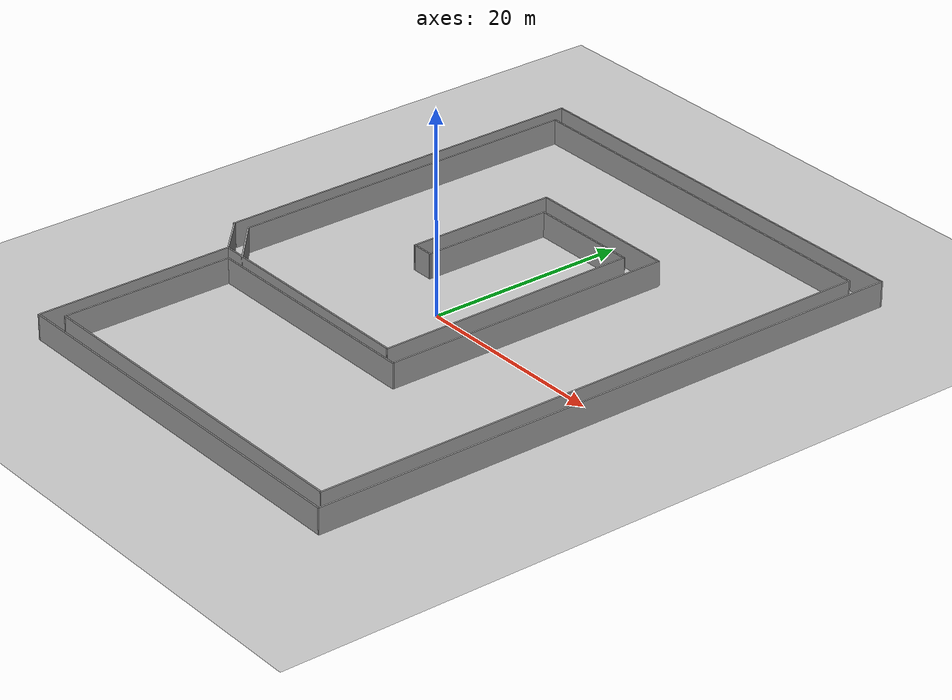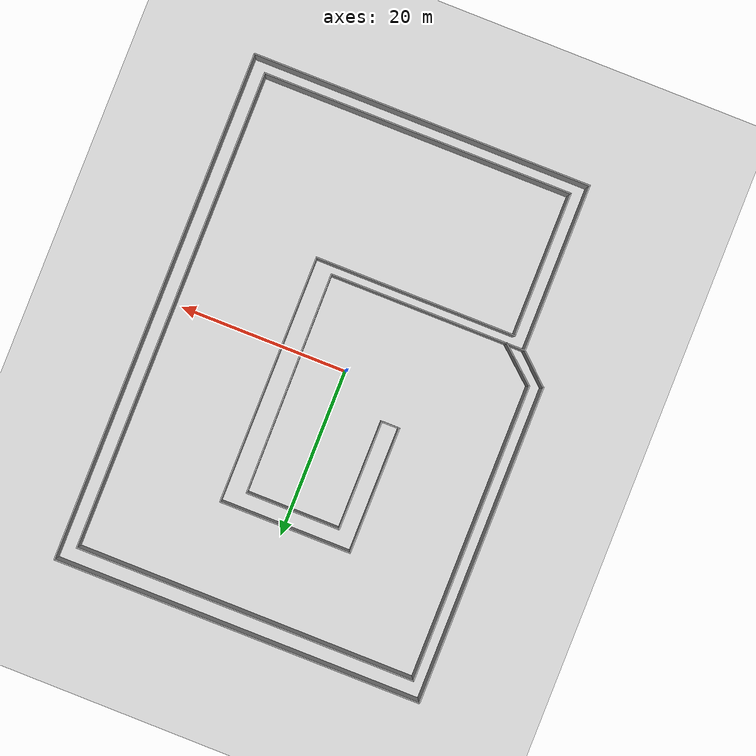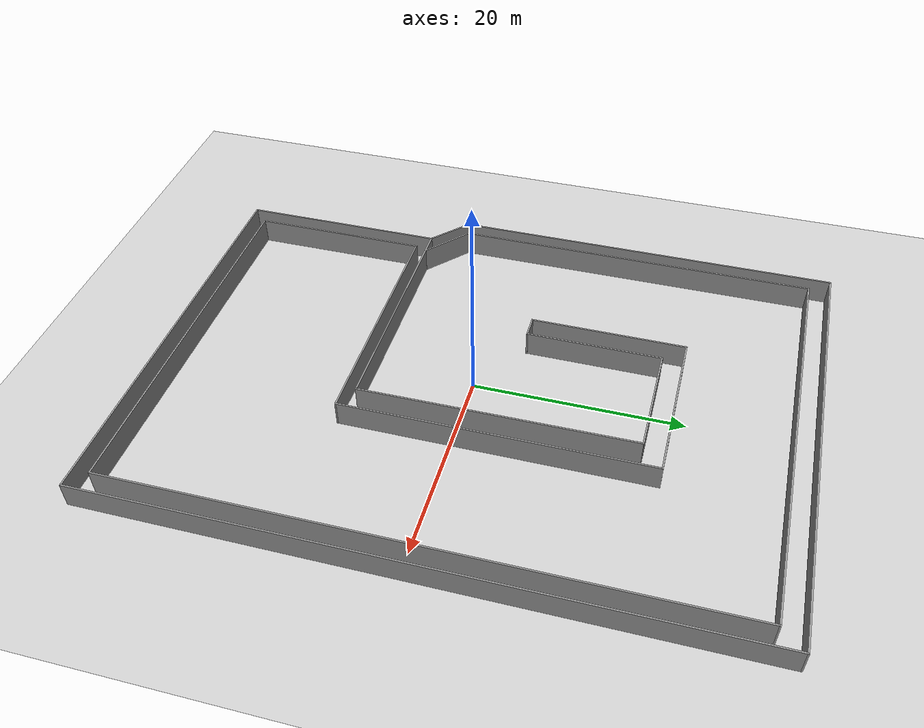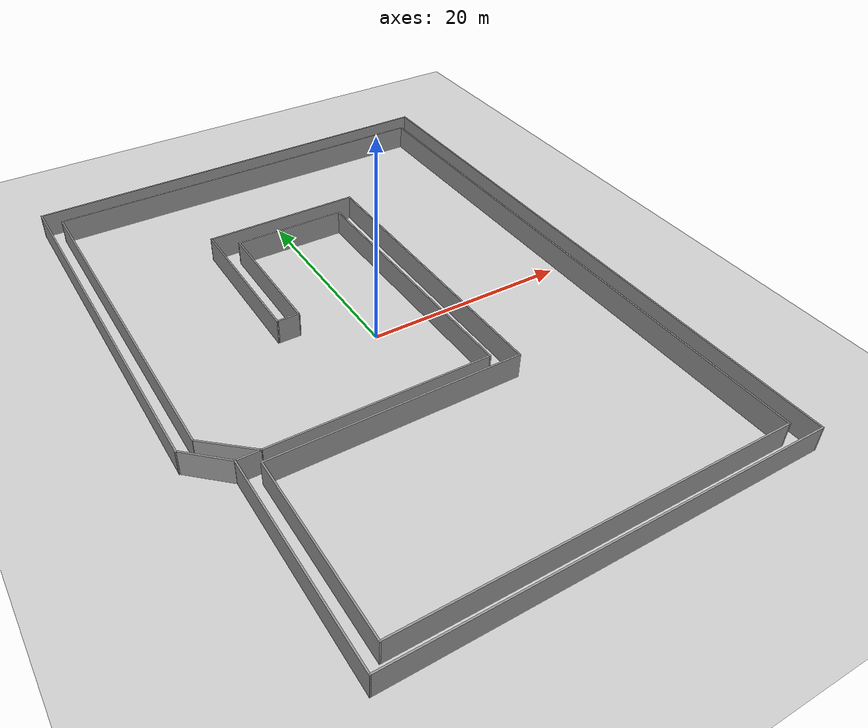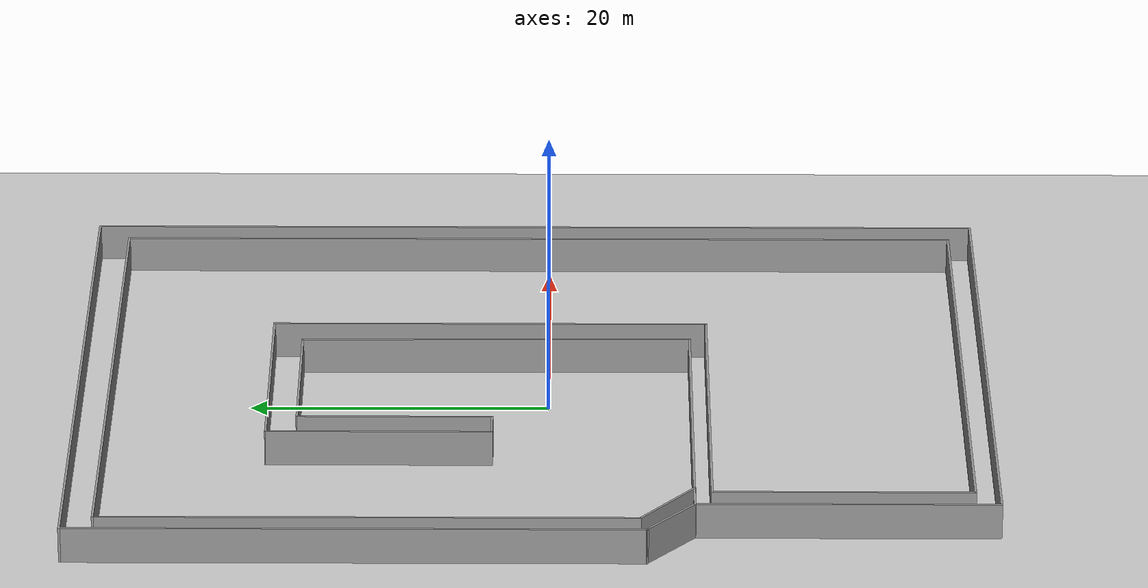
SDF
<sdf version="1.7">
 <world name="default">
  <light name="sun" type="directional">
   <pose>0 0 10 0 -0 0</pose>
   <diffuse>0.8 0.8 0.8 1</diffuse>
   <specular>0.2 0.2 0.2 1</specular>
   <attenuation>
    <range>1000</range>
    <constant>0.9</constant>
    <linear>0.01</linear>
    <quadratic>0.001</quadratic>
   </attenuation>
   <direction>-0.5 0.1 -0.9</direction>
   <spot><inner_angle>0</inner_angle><outer_angle>0</outer_angle><falloff>0</falloff></spot>
  </light>
  <model name="ground_plane">
   <static>1</static>
   <link name="link">
    <collision name="collision">
     <geometry><plane><normal>0 0 1</normal><size>100 100</size></plane></geometry>
     <surface><friction><ode><mu>100</mu><mu2>50</mu2></ode></friction></surface>
    </collision>
    <visual name="visual">
     <cast_shadows>0</cast_shadows>
     <geometry><plane><normal>0 0 1</normal><size>100 100</size></plane></geometry>
     <material>
      <script><uri>file://media/materials/scripts/gazebo.material</uri><name>Gazebo/Grey</name></script>
     </material>
    </visual>
   </link>
  </model>
  <gravity>0 0 -9.8</gravity>
  <magnetic_field>6e-06 2.3e-05 -4.2e-05</magnetic_field>
  <atmosphere type="adiabatic"/>
  <physics type="ode">
   <max_step_size>0.001</max_step_size>
   <real_time_factor>1</real_time_factor>
   <real_time_update_rate>1000</real_time_update_rate>
  </physics>
  <scene><ambient>0.4 0.4 0.4 1</ambient><background>0.7 0.7 0.7 1</background><shadows>1</shadows></scene>
  <audio><device>default</device></audio>
  <spherical_coordinates>
   <surface_model>EARTH_WGS84</surface_model>
   <latitude_deg>0</latitude_deg>
   <longitude_deg>0</longitude_deg>
   <elevation>0</elevation>
   <heading_deg>0</heading_deg>
  </spherical_coordinates>
  <model name="parking_arena1">
   <pose>0.647746 1.06133 0 0 -0 0</pose>
   <link name="Wall_10">
    <collision name="Wall_10_Collision">
     <geometry><box><size>15.0934 0.15 2.5</size></box></geometry>
     <pose>0 0 1.25 0 -0 0</pose>
    </collision>
    <visual name="Wall_10_Visual">
     <pose>0 0 1.25 0 -0 0</pose>
     <geometry><box><size>15.0934 0.15 2.5</size></box></geometry>
     <material>
      <script><uri>file://media/materials/scripts/gazebo.material</uri><name>Gazebo/Grey</name></script>
      <ambient>1 1 1 1</ambient>
     </material>
     <meta><layer>0</layer></meta>
    </visual>
    <pose>-8.55456 10.1592 0 0 -0 1.5687</pose>
   </link>
   <link name="Wall_11">
    <collision name="Wall_11_Collision">
     <geometry><box><size>15.75 0.15 2.5</size></box></geometry>
     <pose>0 0 1.25 0 -0 0</pose>
    </collision>
    <visual name="Wall_11_Visual">
     <pose>0 0 1.25 0 -0 0</pose>
     <geometry><box><size>15.75 0.15 2.5</size></box></geometry>
     <material>
      <script><uri>file://media/materials/scripts/gazebo.material</uri><name>Gazebo/Grey</name></script>
      <ambient>1 1 1 1</ambient>
     </material>
     <meta><layer>0</layer></meta>
    </visual>
    <pose>-0.738865 17.6309 0 0 -0 0</pose>
   </link>
   <link name="Wall_12">
    <collision name="Wall_12_Collision">
     <geometry><box><size>29.5 0.15 2.5</size></box></geometry>
     <pose>0 0 1.25 0 -0 0</pose>
    </collision>
    <visual name="Wall_12_Visual">
     <pose>0 0 1.25 0 -0 0</pose>
     <geometry><box><size>29.5 0.15 2.5</size></box></geometry>
     <material>
      <script><uri>file://media/materials/scripts/gazebo.material</uri><name>Gazebo/Grey</name></script>
      <ambient>1 1 1 1</ambient>
     </material>
     <meta><layer>0</layer></meta>
    </visual>
    <pose>7.06114 2.9559 0 0 -0 -1.5708</pose>
   </link>
   <link name="Wall_13">
    <collision name="Wall_13_Collision">
     <geometry><box><size>24 0.15 2.5</size></box></geometry>
     <pose>0 0 1.25 0 -0 0</pose>
    </collision>
    <visual name="Wall_13_Visual">
     <pose>0 0 1.25 0 -0 0</pose>
     <geometry><box><size>24 0.15 2.5</size></box></geometry>
     <material>
      <script><uri>file://media/materials/scripts/gazebo.material</uri><name>Gazebo/Grey</name></script>
      <ambient>1 1 1 1</ambient>
     </material>
     <meta><layer>0</layer></meta>
    </visual>
    <pose>-4.86386 -11.7191 0 0 -0 3.14159</pose>
   </link>
   <link name="Wall_15">
    <collision name="Wall_15_Collision">
     <geometry><box><size>20 0.15 2.5</size></box></geometry>
     <pose>0 0 1.25 0 -0 0</pose>
    </collision>
    <visual name="Wall_15_Visual">
     <pose>0 0 1.25 0 -0 0</pose>
     <geometry><box><size>20 0.15 2.5</size></box></geometry>
     <material>
      <script><uri>file://media/materials/scripts/gazebo.material</uri><name>Gazebo/Grey</name></script>
      <ambient>1 1 1 1</ambient>
     </material>
     <meta><layer>0</layer></meta>
    </visual>
    <pose>-18.4389 -20.5 0 0 -0 -1.5708</pose>
   </link>
   <link name="Wall_16">
    <collision name="Wall_16_Collision">
     <geometry><box><size>40.5 0.15 2.5</size></box></geometry>
     <pose>0 0 1.25 0 -0 0</pose>
    </collision>
    <visual name="Wall_16_Visual">
     <pose>0 0 1.25 0 -0 0</pose>
     <geometry><box><size>40.5 0.15 2.5</size></box></geometry>
     <material>
      <script><uri>file://media/materials/scripts/gazebo.material</uri><name>Gazebo/Grey</name></script>
      <ambient>1 1 1 1</ambient>
     </material>
     <meta><layer>0</layer></meta>
    </visual>
    <pose>1.73613 -30.425 0 0 -0 0</pose>
   </link>
   <link name="Wall_17">
    <collision name="Wall_17_Collision">
     <geometry><box><size>61 0.15 2.5</size></box></geometry>
     <pose>0 0 1.25 0 -0 0</pose>
    </collision>
    <visual name="Wall_17_Visual">
     <pose>0 0 1.25 0 -0 0</pose>
     <geometry><box><size>61 0.15 2.5</size></box></geometry>
     <material>
      <script><uri>file://media/materials/scripts/gazebo.material</uri><name>Gazebo/Grey</name></script>
      <ambient>1 1 1 1</ambient>
     </material>
     <meta><layer>0</layer></meta>
    </visual>
    <pose>21.9111 -3.6e-05 0 0 -0 1.5708</pose>
   </link>
   <link name="Wall_18">
    <collision name="Wall_18_Collision">
     <geometry><box><size>43.9429 0.15 2.5</size></box></geometry>
     <pose>0 0 1.25 0 -0 0</pose>
    </collision>
    <visual name="Wall_18_Visual">
     <pose>0 0 1.25 0 -0 0</pose>
     <geometry><box><size>43.9429 0.15 2.5</size></box></geometry>
     <material>
      <script><uri>file://media/materials/scripts/gazebo.material</uri><name>Gazebo/Grey</name></script>
      <ambient>1 1 1 1</ambient>
     </material>
     <meta><layer>0</layer></meta>
    </visual>
    <pose>0.015201 30.4032 0 0 -0 -3.1406</pose>
   </link>
   <link name="Wall_19">
    <collision name="Wall_19_Collision">
     <geometry><box><size>38 0.15 2.5</size></box></geometry>
     <pose>0 0 1.25 0 -0 0</pose>
    </collision>
    <visual name="Wall_19_Visual">
     <pose>0 0 1.25 0 -0 0</pose>
     <geometry><box><size>38 0.15 2.5</size></box></geometry>
     <material>
      <script><uri>file://media/materials/scripts/gazebo.material</uri><name>Gazebo/Grey</name></script>
      <ambient>1 1 1 1</ambient>
     </material>
     <meta><layer>0</layer></meta>
    </visual>
    <pose>-21.8807 11.4564 0 0 -0 -1.5708</pose>
   </link>
   <link name="Wall_20">
    <collision name="Wall_20_Collision">
     <geometry><box><size>4.8136 0.15 2.5</size></box></geometry>
     <pose>0 0 1.25 0 -0 0</pose>
    </collision>
    <visual name="Wall_20_Visual">
     <pose>0 0 1.25 0 -0 0</pose>
     <geometry><box><size>4.8136 0.15 2.5</size></box></geometry>
     <material>
      <script><uri>file://media/materials/scripts/gazebo.material</uri><name>Gazebo/Grey</name></script>
      <ambient>1 1 1 1</ambient>
     </material>
     <meta><layer>0</layer></meta>
    </visual>
    <pose>-20.1598 -9.00161 0 0 -0 -0.740653</pose>
   </link>
   <link name="Wall_22">
    <collision name="Wall_22_Collision">
     <geometry><box><size>17.25 0.15 2.5</size></box></geometry>
     <pose>0 0 1.25 0 -0 0</pose>
    </collision>
    <visual name="Wall_22_Visual">
     <pose>0 0 1.25 0 -0 0</pose>
     <geometry><box><size>17.25 0.15 2.5</size></box></geometry>
     <material>
      <script><uri>file://media/materials/scripts/gazebo.material</uri><name>Gazebo/Grey</name></script>
      <ambient>1 1 1 1</ambient>
     </material>
     <meta><layer>0</layer></meta>
    </visual>
    <pose>-16.7889 -20.2691 0 0 -0 -1.5708</pose>
   </link>
   <link name="Wall_23">
    <collision name="Wall_23_Collision">
     <geometry><box><size>37 0.15 2.5</size></box></geometry>
     <pose>0 0 1.25 0 -0 0</pose>
    </collision>
    <visual name="Wall_23_Visual">
     <pose>0 0 1.25 0 -0 0</pose>
     <geometry><box><size>37 0.15 2.5</size></box></geometry>
     <material>
      <script><uri>file://media/materials/scripts/gazebo.material</uri><name>Gazebo/Grey</name></script>
      <ambient>1 1 1 1</ambient>
     </material>
     <meta><layer>0</layer></meta>
    </visual>
    <pose>1.63613 -28.8191 0 0 -0 0</pose>
   </link>
   <link name="Wall_24">
    <collision name="Wall_24_Collision">
     <geometry><box><size>57.25 0.15 2.5</size></box></geometry>
     <pose>0 0 1.25 0 -0 0</pose>
    </collision>
    <visual name="Wall_24_Visual">
     <pose>0 0 1.25 0 -0 0</pose>
     <geometry><box><size>57.25 0.15 2.5</size></box></geometry>
     <material>
      <script><uri>file://media/materials/scripts/gazebo.material</uri><name>Gazebo/Grey</name></script>
      <ambient>1 1 1 1</ambient>
     </material>
     <meta><layer>0</layer></meta>
    </visual>
    <pose>20.0611 -0.269098 0 0 -0 1.5708</pose>
   </link>
   <link name="Wall_25">
    <collision name="Wall_25_Collision">
     <geometry><box><size>40.5633 0.15 2.5</size></box></geometry>
     <pose>0 0 1.25 0 -0 0</pose>
    </collision>
    <visual name="Wall_25_Visual">
     <pose>0 0 1.25 0 -0 0</pose>
     <geometry><box><size>40.5633 0.15 2.5</size></box></geometry>
     <material>
      <script><uri>file://media/materials/scripts/gazebo.material</uri><name>Gazebo/Grey</name></script>
      <ambient>1 1 1 1</ambient>
     </material>
     <meta><layer>0</layer></meta>
    </visual>
    <pose>-0.145482 28.2996 0 0 -0 3.14067</pose>
   </link>
   <link name="Wall_26">
    <collision name="Wall_26_Collision">
     <geometry><box><size>35.5 0.15 2.5</size></box></geometry>
     <pose>0 0 1.25 0 -0 0</pose>
    </collision>
    <visual name="Wall_26_Visual">
     <pose>0 0 1.25 0 -0 0</pose>
     <geometry><box><size>35.5 0.15 2.5</size></box></geometry>
     <material>
      <script><uri>file://media/materials/scripts/gazebo.material</uri><name>Gazebo/Grey</name></script>
      <ambient>1 1 1 1</ambient>
     </material>
     <meta><layer>0</layer></meta>
    </visual>
    <pose>-20.3521 10.6432 0 0 -0 -1.5708</pose>
   </link>
   <link name="Wall_27">
    <collision name="Wall_27_Collision">
     <geometry><box><size>5.50169 0.15 2.5</size></box></geometry>
     <pose>0 0 1.25 0 -0 0</pose>
    </collision>
    <visual name="Wall_27_Visual">
     <pose>0 0 1.25 0 -0 0</pose>
     <geometry><box><size>5.50169 0.15 2.5</size></box></geometry>
     <material>
      <script><uri>file://media/materials/scripts/gazebo.material</uri><name>Gazebo/Grey</name></script>
      <ambient>1 1 1 1</ambient>
     </material>
     <meta><layer>0</layer></meta>
    </visual>
    <pose>-18.2926 -8.8283 0 0 -0 -0.715853</pose>
   </link>
   <link name="Wall_5">
    <collision name="Wall_5_Collision">
     <geometry><box><size>23.25 0.15 2.5</size></box></geometry>
     <pose>0 0 1.25 0 -0 0</pose>
    </collision>
    <visual name="Wall_5_Visual">
     <pose>0 0 1.25 0 -0 0</pose>
     <geometry><box><size>23.25 0.15 2.5</size></box></geometry>
     <material>
      <script><uri>file://media/materials/scripts/gazebo.material</uri><name>Gazebo/Grey</name></script>
      <ambient>1 1 1 1</ambient>
     </material>
     <meta><layer>0</layer></meta>
    </visual>
    <pose>-6.88887 -10.575 0 0 -0 0</pose>
   </link>
   <link name="Wall_6">
    <collision name="Wall_6_Collision">
     <geometry><box><size>26.3564 0.15 2.5</size></box></geometry>
     <pose>0 0 1.25 0 -0 0</pose>
    </collision>
    <visual name="Wall_6_Visual">
     <pose>0 0 1.25 0 -0 0</pose>
     <geometry><box><size>26.3564 0.15 2.5</size></box></geometry>
     <material>
      <script><uri>file://media/materials/scripts/gazebo.material</uri><name>Gazebo/Grey</name></script>
      <ambient>1 1 1 1</ambient>
     </material>
     <meta><layer>0</layer></meta>
    </visual>
    <pose>4.74297 2.52793 0 0 -0 1.57704</pose>
   </link>
   <link name="Wall_7">
    <collision name="Wall_7_Collision">
     <geometry><box><size>11.25 0.15 2.5</size></box></geometry>
     <pose>0 0 1.25 0 -0 0</pose>
    </collision>
    <visual name="Wall_7_Visual">
     <pose>0 0 1.25 0 -0 0</pose>
     <geometry><box><size>11.25 0.15 2.5</size></box></geometry>
     <material>
      <script><uri>file://media/materials/scripts/gazebo.material</uri><name>Gazebo/Grey</name></script>
      <ambient>1 1 1 1</ambient>
     </material>
     <meta><layer>0</layer></meta>
    </visual>
    <pose>-0.888865 15.6309 0 0 -0 3.14159</pose>
   </link>
   <link name="Wall_8">
    <collision name="Wall_8_Collision">
     <geometry><box><size>13.0934 0.15 2.5</size></box></geometry>
     <pose>0 0 1.25 0 -0 0</pose>
    </collision>
    <visual name="Wall_8_Visual">
     <pose>0 0 1.25 0 -0 0</pose>
     <geometry><box><size>13.0934 0.15 2.5</size></box></geometry>
     <material>
      <script><uri>file://media/materials/scripts/gazebo.material</uri><name>Gazebo/Grey</name></script>
      <ambient>1 1 1 1</ambient>
     </material>
     <meta><layer>0</layer></meta>
    </visual>
    <pose>-6.45456 9.15922 0 0 -0 -1.57322</pose>
   </link>
   <link name="Wall_9">
    <collision name="Wall_9_Collision">
     <geometry><box><size>2.25 0.15 2.5</size></box></geometry>
     <pose>0 0 1.25 0 -0 0</pose>
    </collision>
    <visual name="Wall_9_Visual">
     <pose>0 0 1.25 0 -0 0</pose>
     <geometry><box><size>2.25 0.15 2.5</size></box></geometry>
     <material>
      <script><uri>file://media/materials/scripts/gazebo.material</uri><name>Gazebo/Grey</name></script>
      <ambient>1 1 1 1</ambient>
     </material>
     <meta><layer>0</layer></meta>
    </visual>
    <pose>-7.49712 2.68753 0 0 -0 3.14159</pose>
   </link>
   <static>1</static>
  </model>
 </world>
</sdf>
